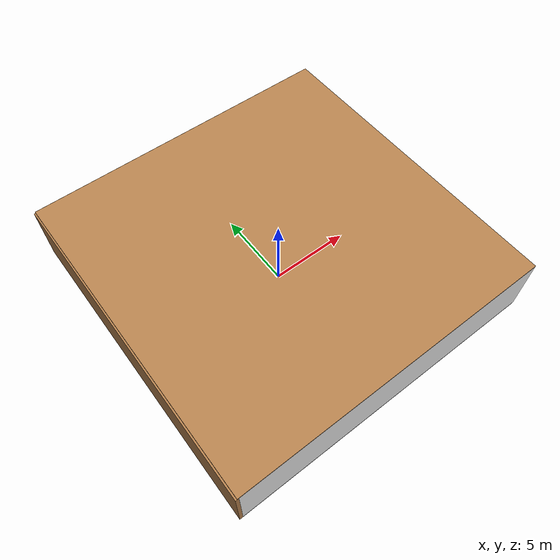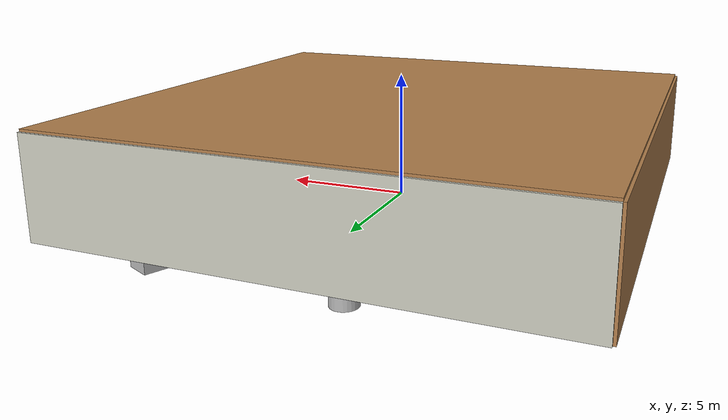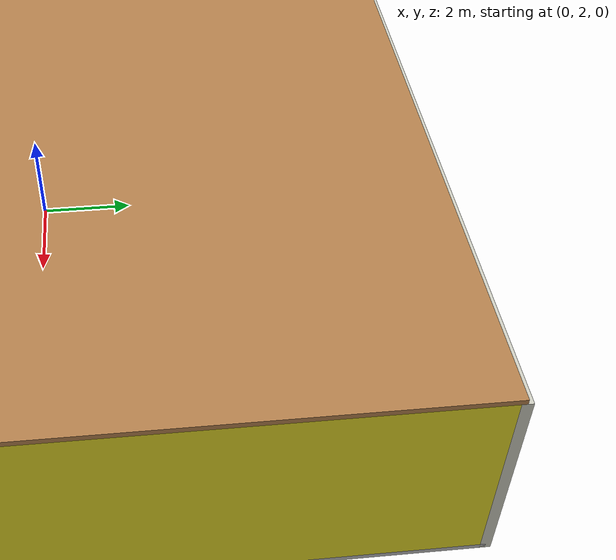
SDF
<sdf version="1.4">
 <world name="default">
  <physics type="ode">
   <max_step_size>0.001</max_step_size>
   <real_time_factor>1</real_time_factor>
   <real_time_update_rate>1000</real_time_update_rate>
   <gravity>0 0 -9.8</gravity>
  </physics>
  <scene><ambient>0.4 0.4 0.4 1</ambient><background>0.7 0.7 0.7 1</background><shadows>1</shadows></scene>
  <model name="Surrounding">
   <static>1</static>
   <link name="Ceiling">
    <collision name="Ceiling_Collision"><geometry><box><size>20 20 0.1</size></box></geometry></collision>
    <visual name="Ceiling_Visual">
     <geometry><box><size>20 20 0.1</size></box></geometry>
     <material>
      <script><uri>file://media/materials/scripts/gazebo.material</uri><name>Gazebo/WoodPallet</name></script>
     </material>
    </visual>
    <pose>0 0 4.05 0 0 0</pose>
   </link>
   <link name="Wall_South">
    <collision name="Wall_South_Collision">
     <geometry><box><size>20 0 4</size></box></geometry>
     <pose>0 0 2 0 -0 0</pose>
    </collision>
    <visual name="Wall_South_Visual">
     <pose>0 0 2 0 -0 0</pose>
     <geometry><box><size>20 0 4</size></box></geometry>
     <material>
      <script><uri>file://media/materials/scripts/gazebo.material</uri><name>Gazebo/White</name></script>
     </material>
    </visual>
    <velocity_decay><linear>0</linear><angular>0</angular></velocity_decay>
    <pose>0 -10 0 0 -0 0</pose>
   </link>
   <link name="Wall_East">
    <collision name="Wall_21_Collision">
     <geometry><box><size>20 0 4</size></box></geometry>
     <pose>0 0 2 0 -0 0</pose>
    </collision>
    <visual name="Wall_21_Visual">
     <pose>0 0 2 0 -0 0</pose>
     <geometry><box><size>20 0 4</size></box></geometry>
     <material>
      <script><uri>file://media/materials/scripts/gazebo.material</uri><name>Gazebo/YellowGlow</name></script>
     </material>
    </visual>
    <velocity_decay><linear>0</linear><angular>0</angular></velocity_decay>
    <pose>10 0 0 0 -0 1.5708</pose>
   </link>
   <link name="Wall_North">
    <collision name="Wall_22_Collision">
     <geometry><box><size>20 0.2 4</size></box></geometry>
     <pose>0 0 2 0 -0 0</pose>
    </collision>
    <visual name="Wall_22_Visual">
     <pose>0 0 2 0 -0 0</pose>
     <geometry><box><size>20 0.2 4</size></box></geometry>
     <material>
      <script><uri>file://media/materials/scripts/gazebo.material</uri><name>Gazebo/PaintedWall</name></script>
     </material>
    </visual>
    <velocity_decay><linear>0</linear><angular>0</angular></velocity_decay>
    <pose>0 10 0 0 -0 0</pose>
   </link>
   <link name="Wall_West">
    <collision name="Wall_23_Collision">
     <geometry><box><size>20 0.2 4</size></box></geometry>
     <pose>0 0 2 0 -0 0</pose>
    </collision>
    <visual name="Wall_23_Visual">
     <pose>0 0 2 0 -0 0</pose>
     <geometry><box><size>20 0.2 4</size></box></geometry>
     <material>
      <script><uri>file://media/materials/scripts/gazebo.material</uri><name>Gazebo/Wood</name></script>
     </material>
    </visual>
    <velocity_decay><linear>0</linear><angular>0</angular></velocity_decay>
    <pose>-10 0 0 0 0 -1.5708</pose>
   </link>
   <link name="Ground_link">
    <collision name="collision">
     <pose>0 0 .05 0 -0 0</pose>
     <geometry><box><size>20 20 0.1</size></box></geometry>
    </collision>
    <visual name="visual">
     <pose>0 0 .05 0 -0 0</pose>
     <geometry><box><size>20 20 0.1</size></box></geometry>
     <material>
      <script><uri>file://media/materials/scripts/gazebo.material</uri><name>Gazebo/Pioneer2Body</name></script>
     </material>
    </visual>
   </link>
   <static>1</static>
  </model>
  <spherical_coordinates>
   <surface_model>EARTH_WGS84</surface_model>
   <latitude_deg>0</latitude_deg>
   <longitude_deg>0</longitude_deg>
   <elevation>0</elevation>
   <heading_deg>0</heading_deg>
  </spherical_coordinates>
  <light name="lightball_0" type="diffuse">
   <diffuse>0.8 0.8 0.8 1</diffuse>
   <specular>0.2 0.2 0.2 1</specular>
   <attenuation>
    <range>100</range>
    <constant>0.7</constant>
    <linear>0.01</linear>
    <quadratic>0.001</quadratic>
   </attenuation>
   <direction>-0.5 0.1 -0.9</direction>
   <pose>6.24020439676 -6.80541173813 0.735420642403 0 0 0</pose>
  </light>
  <light name="lightball_1" type="diffuse">
   <diffuse>0.8 0.8 0.8 1</diffuse>
   <specular>0.2 0.2 0.2 1</specular>
   <attenuation>
    <range>100</range>
    <constant>0.7</constant>
    <linear>0.01</linear>
    <quadratic>0.001</quadratic>
   </attenuation>
   <direction>-0.5 0.1 -0.9</direction>
   <pose>-0.187001758369 3.83391041709 2.11197135884 0 0 0</pose>
  </light>
  <light name="lightball_2" type="diffuse">
   <diffuse>0.8 0.8 0.8 1</diffuse>
   <specular>0.2 0.2 0.2 1</specular>
   <attenuation>
    <range>100</range>
    <constant>0.7</constant>
    <linear>0.01</linear>
    <quadratic>0.001</quadratic>
   </attenuation>
   <direction>-0.5 0.1 -0.9</direction>
   <pose>7.5025573183 -0.402273882335 0.740574749684 0 0 0</pose>
  </light>
  <include>
   <uri>model://construction_cone</uri>
   <pose>-7.20340501452 4.58125676326 0 0 0 2.71696149434</pose>
  </include>
  <include>
   <uri>model://textured_shapes</uri>
   <pose>-1.0509520176 8.29508610505 0 0 0 0.630012953101</pose>
  </include>
  <include>
   <uri>model://textured_shapes</uri>
   <pose>4.86015982879 7.94435152139 0 0 0 2.72128133828</pose>
  </include>
  <include><uri>model://cabinet</uri><pose>7.10055226305 -4.78928915143 0 0 0 1.15014251467</pose></include>
 </world>
</sdf>

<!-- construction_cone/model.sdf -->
<sdf version="1.5">
  <model name="Construction Cone">
    <link name="link">
      <collision name="collision">
        <geometry>
          <mesh>
            <scale>10 10 10</scale>
            <uri>file://isr-testbed/construction_cone/meshes/construction_cone.dae</uri>
          </mesh>
        </geometry>
      </collision>
      <visual name="visual">
        <geometry>
          <mesh>
            <scale>10 10 10</scale>
            <uri>file://isr-testbed/construction_cone/meshes/construction_cone.dae</uri>
          </mesh>
        </geometry>
      </visual>
    </link>
  </model>
</sdf>

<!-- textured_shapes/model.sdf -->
<sdf version="1.6">
  <model name="textured_shapes">
    <pose>0 0 0.5 0 0 0</pose>
    <link name="box">
      <pose>0 -1.5 0 0 0 0</pose>
      <collision name="collision">
        <geometry>
          <box>
            <size>1 1 1</size>
          </box>
        </geometry>
      </collision>
      <visual name="visual">
        <geometry>
          <box>
            <size>1 1 1</size>
          </box>
        </geometry>
        <material>
          <script>
            <uri>model://../model_source/models/textured_shapes/materials/scripts</uri>
            <uri>model://../model_source/models/textured_shapes/materials/textures</uri>
            <name>TexturedShape/Squares</name>
          </script>
        </material>
      </visual>
    </link>
    <link name="sphere">
      <collision name="collision">
        <geometry>
          <sphere>
            <radius>0.5</radius>
          </sphere>
        </geometry>
      </collision>
      <visual name="visual">
        <geometry>
          <sphere>
            <radius>0.5</radius>
          </sphere>
        </geometry>
        <material>
          <script>
            <uri>model://../model_source/models/textured_shapes/materials/scripts</uri>
            <uri>model://../model_source/models/textured_shapes/materials/textures</uri>
            <name>TexturedShape/Squares</name>
          </script>
        </material>
      </visual>
    </link>
    <link name="cylinder">
      <pose>0 1.5 0 0 0 0</pose>
      <collision name="collision">
        <geometry>
          <cylinder>
            <radius>0.5</radius>
            <length>1</length>
          </cylinder>
        </geometry>
      </collision>
      <visual name="visual">
        <geometry>
          <cylinder>
            <radius>0.5</radius>
            <length>1</length>
          </cylinder>
        </geometry>
        <material>
          <script>
            <uri>model://../model_source/models/textured_shapes/materials/scripts</uri>
            <uri>model://../model_source/models/textured_shapes/materials/textures</uri>
            <name>TexturedShape/Squares</name>
          </script>
        </material>
      </visual>
    </link>
  </model>
</sdf>

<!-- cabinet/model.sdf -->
<sdf version="1.5">
  <model name="cabinet">
    <static>true</static>
    <link name="cabinet_bottom_plate">
      <inertial>
        <pose>0 0 -1 0 0 0</pose>
        <inertia>
          <ixx>2.050000</ixx>
          <ixy>0</ixy>
          <ixz>0</ixz>
          <iyy>2.050000</iyy>
          <iyz>0</iyz>
          <izz>2.050000</izz>
        </inertia>
        <mass>25.000000</mass>
      </inertial>
      <collision name="cabinet_bottom_plate_geom">
        <pose>0 0 0.010000 0 0 0</pose>
        <geometry>
          <box>
            <size>0.450000 0.450000 0.020000</size>
          </box>
        </geometry>
      </collision>
      <visual name="cabinet_bottom_plate_geom_visual">
        <pose>0 0 0.010000 0 0 0</pose>
        <geometry>
          <box>
            <size>0.450000 0.450000 0.020000</size>
          </box>
        </geometry>
        <material>
          <script>
            <uri>model://media/materials/scripts/gazebo.material</uri>
            <name>Gazebo/Wood</name>
          </script>
        </material>
      </visual>
      <collision name="cabinet_bottom_plate_geom_cabinet_back_plate">
        <pose>0.235000 0 0.510000 0 0 0</pose>
        <geometry>
          <box>
            <size>0.020000 0.450000 1.020000</size>
          </box>
        </geometry>
      </collision>
      <visual name="cabinet_bottom_plate_geom_cabinet_back_plate_visual">
        <pose>0.235000 0 0.510000 0 0 0</pose>
        <geometry>
          <box>
            <size>0.020000 0.450000 1.020000</size>
          </box>
        </geometry>
        <material>
          <script>
            <uri>model://media/materials/scripts/gazebo.material</uri>
            <name>Gazebo/Wood</name>
          </script>
        </material>
      </visual>
      <collision name="cabinet_bottom_plate_geom_cabinet_left_plate">
        <pose>0 0.235000 0.510000 0 0 0</pose>
        <geometry>
          <box>
            <size>0.450000 0.020000 1.020000</size>
          </box>
        </geometry>
      </collision>
      <visual name="cabinet_bottom_plate_geom_cabinet_left_plate_visual">
        <pose>0 0.235000 0.510000 0 0 0</pose>
        <geometry>
          <box>
            <size>0.450000 0.020000 1.020000</size>
          </box>
        </geometry>
        <material>
          <script>
            <uri>model://media/materials/scripts/gazebo.material</uri>
            <name>Gazebo/Wood</name>
          </script>
        </material>
      </visual>
      <collision name="cabinet_bottom_plate_geom_cabinet_middle_plate">
        <pose>0 0 0.510000 0 0 0</pose>
        <geometry>
          <box>
            <size>0.450000 0.450000 0.020000</size>
          </box>
        </geometry>
      </collision>
      <visual name="cabinet_bottom_plate_geom_cabinet_middle_plate_visual">
        <pose>0 0 0.510000 0 0 0</pose>
        <geometry>
          <box>
            <size>0.450000 0.450000 0.020000</size>
          </box>
        </geometry>
        <material>
          <script>
            <uri>model://media/materials/scripts/gazebo.material</uri>
            <name>Gazebo/Wood</name>
          </script>
        </material>
      </visual>
      <collision name="cabinet_bottom_plate_geom_cabinet_right_plate">
        <pose>0 -0.235000 0.510000 0 0 0</pose>
        <geometry>
          <box>
            <size>0.450000 0.020000 1.020000</size>
          </box>
        </geometry>
      </collision>
      <visual name="cabinet_bottom_plate_geom_cabinet_right_plate_visual">
        <pose>0 -0.235000 0.510000 0 0 0</pose>
        <geometry>
          <box>
            <size>0.450000 0.020000 1.020000</size>
          </box>
        </geometry>
        <material>
          <script>
            <uri>model://media/materials/scripts/gazebo.material</uri>
            <name>Gazebo/Wood</name>
          </script>
        </material>
      </visual>
      <collision name="cabinet_bottom_plate_geom_cabinet_top_plate">
        <pose>0 0 1.010000 0 0 0</pose>
        <geometry>
          <box>
            <size>0.450000 0.450000 0.020000</size>
          </box>
        </geometry>
      </collision>
      <visual name="cabinet_bottom_plate_geom_cabinet_top_plate_visual">
        <pose>0 0 1.010000 0 0 0</pose>
        <geometry>
          <box>
            <size>0.450000 0.450000 0.020000</size>
          </box>
        </geometry>
        <material>
          <script>
            <uri>model://media/materials/scripts/gazebo.material</uri>
            <name>Gazebo/Wood</name>
          </script>
        </material>
      </visual>
    </link>
  </model>
</sdf>
